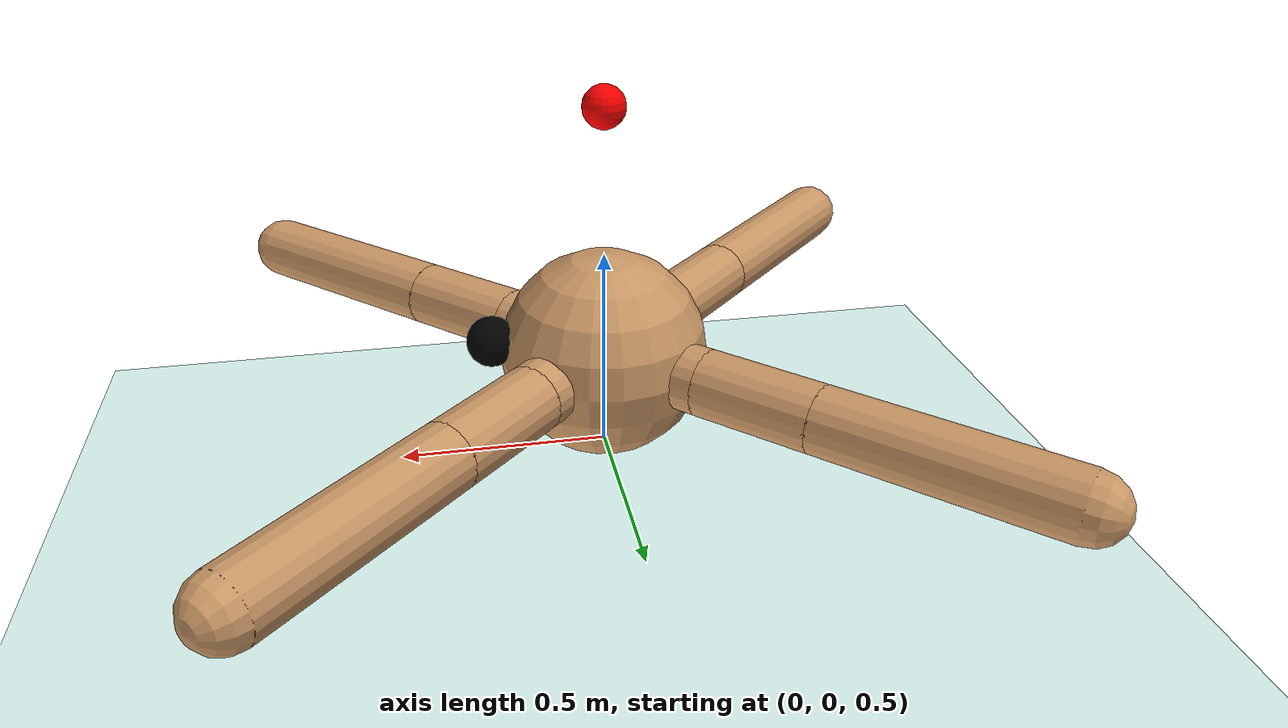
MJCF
<mujoco model="ant">
  <compiler angle="degree" coordinate="local" inertiafromgeom="true"/>
  <option integrator="RK4" timestep="0.01"/>
  <!-- Set extent to 12 manually to match arena size. Required for RGBD visual because adding walls inflate the extent. -->
  <custom>
    <numeric data="0.0 0.0 0.55 1.0 0.0 0.0 0.0 0.0 1.0 0.0 -1.0 0.0 -1.0 0.0 1.0" name="init_qpos"/>
  </custom>
  <default>
    <joint armature="1" damping="1" limited="true"/>
    <geom conaffinity="0" condim="3" density="5.0" friction="1 0.5 0.5" margin="0.01" rgba="0.8 0.6 0.4 1"/>
  </default>
  <asset>
    <texture builtin="gradient" height="100" rgb1="1 1 1" rgb2="0 0 0" type="skybox" width="100"/>
    <texture builtin="flat" height="1278" mark="cross" markrgb="1 1 1" name="texgeom" random="0.01" rgb1="0.8 0.6 0.4" rgb2="0.8 0.6 0.4" type="cube" width="127"/>
    <!-- Flat Grey Texture for the floor -->
    <texture builtin="flat" height="100" name="texgrey" rgb1="0.6 0.6 0.6" type="2d" width="100"/>
    <material name="FloorColour" reflectance="0.0" shininess="0.2" specular="0.1" rgba="0.85 0.96 0.94 1.0"/>
    <material name="geom" texture="texgeom" texuniform="true"/>

  </asset>
  <worldbody>
    <light cutoff="100" diffuse="1 1 1" dir="-0 0 -1.3" directional="true" exponent="1" pos="0 0 1.3" specular=".1 .1 .1"/>
    <geom conaffinity="1" condim="3" material="FloorColour" name="floor" pos="0 0 0" rgba="0.85 0.96 0.94 1.0" size="50 50 50" type="plane"/>
    <!-- Environment Camera -->
    <camera name="environment" pos="8.128 -9.474 19.569" xyaxes="0.755 0.656 0.000 -0.556 0.640 0.530"/>

    <body name="torso" pos="0 0 0.75">
      <camera name="track" mode="trackcom" pos="0 -3 0.3" xyaxes="1 0 0 0 0 1"/>

      <!-- POV Camera and Marker: -->
      <camera name="pov" euler="90 -90 0" fovy="90" pos="0.3 0 0" />
      <site name="camera_pos" rgba="1 0 0 1" pos="0 0 0.6" size="0.05"/>
      <site name="pov_cam_marker" type="sphere" pos="0.27 0 0.05" size="0.06" rgba="0 0 0 1"/>

      <geom name="torso_geom" pos="0 0 0" size="0.25" type="sphere"/>
      <joint armature="0.0" damping="0.0" limited="false" margin="0.01" name="root" pos="0 0 0" type="free"/>
      <body name="front_left_leg" pos="0 0 0">
        <geom fromto="0.0 0.0 0.0 0.2 0.2 0.0" name="aux_1_geom" size="0.08" type="capsule"/>
        <body name="aux_1" pos="0.2 0.2 0">
          <joint axis="0 0 1" name="hip_1" pos="0.0 0.0 0.0" range="-30 30" type="hinge"/>
          <geom fromto="0.0 0.0 0.0 0.2 0.2 0.0" name="left_leg_geom" size="0.08" type="capsule"/>
          <body pos="0.2 0.2 0">
            <joint axis="-1 1 0" name="ankle_1" pos="0.0 0.0 0.0" range="30 70" type="hinge"/>
            <geom fromto="0.0 0.0 0.0 0.4 0.4 0.0" name="left_ankle_geom" size="0.08" type="capsule"/>
          </body>
        </body>
      </body>
      <body name="front_right_leg" pos="0 0 0">
        <geom fromto="0.0 0.0 0.0 -0.2 0.2 0.0" name="aux_2_geom" size="0.08" type="capsule"/>
        <body name="aux_2" pos="-0.2 0.2 0">
          <joint axis="0 0 1" name="hip_2" pos="0.0 0.0 0.0" range="-30 30" type="hinge"/>
          <geom fromto="0.0 0.0 0.0 -0.2 0.2 0.0" name="right_leg_geom" size="0.08" type="capsule"/>
          <body pos="-0.2 0.2 0">
            <joint axis="1 1 0" name="ankle_2" pos="0.0 0.0 0.0" range="-70 -30" type="hinge"/>
            <geom fromto="0.0 0.0 0.0 -0.4 0.4 0.0" name="right_ankle_geom" size="0.08" type="capsule"/>
          </body>
        </body>
      </body>
      <body name="back_leg" pos="0 0 0">
        <geom fromto="0.0 0.0 0.0 -0.2 -0.2 0.0" name="aux_3_geom" size="0.08" type="capsule"/>
        <body name="aux_3" pos="-0.2 -0.2 0">
          <joint axis="0 0 1" name="hip_3" pos="0.0 0.0 0.0" range="-30 30" type="hinge"/>
          <geom fromto="0.0 0.0 0.0 -0.2 -0.2 0.0" name="back_leg_geom" size="0.08" type="capsule"/>
          <body pos="-0.2 -0.2 0">
            <joint axis="-1 1 0" name="ankle_3" pos="0.0 0.0 0.0" range="-70 -30" type="hinge"/>
            <geom fromto="0.0 0.0 0.0 -0.4 -0.4 0.0" name="third_ankle_geom" size="0.08" type="capsule"/>
          </body>
        </body>
      </body>
      <body name="right_back_leg" pos="0 0 0">
        <geom fromto="0.0 0.0 0.0 0.2 -0.2 0.0" name="aux_4_geom" size="0.08" type="capsule"/>
        <body name="aux_4" pos="0.2 -0.2 0">
          <joint axis="0 0 1" name="hip_4" pos="0.0 0.0 0.0" range="-30 30" type="hinge"/>
          <geom fromto="0.0 0.0 0.0 0.2 -0.2 0.0" name="rightback_leg_geom" size="0.08" type="capsule"/>
          <body pos="0.2 -0.2 0">
            <joint axis="1 1 0" name="ankle_4" pos="0.0 0.0 0.0" range="30 70" type="hinge"/>
            <geom fromto="0.0 0.0 0.0 0.4 -0.4 0.0" name="fourth_ankle_geom" size="0.08" type="capsule"/>
          </body>
        </body>
      </body>
    </body>

  </worldbody>
  <actuator>
    <motor ctrllimited="true" ctrlrange="-1.0 1.0" joint="hip_4" gear="30"/>
    <motor ctrllimited="true" ctrlrange="-1.0 1.0" joint="ankle_4" gear="30"/>
    <motor ctrllimited="true" ctrlrange="-1.0 1.0" joint="hip_1" gear="30"/>
    <motor ctrllimited="true" ctrlrange="-1.0 1.0" joint="ankle_1" gear="30"/>
    <motor ctrllimited="true" ctrlrange="-1.0 1.0" joint="hip_2" gear="30"/>
    <motor ctrllimited="true" ctrlrange="-1.0 1.0" joint="ankle_2" gear="30"/>
    <motor ctrllimited="true" ctrlrange="-1.0 1.0" joint="hip_3" gear="30"/>
    <motor ctrllimited="true" ctrlrange="-1.0 1.0" joint="ankle_3" gear="30"/>
  </actuator>

</mujoco>
